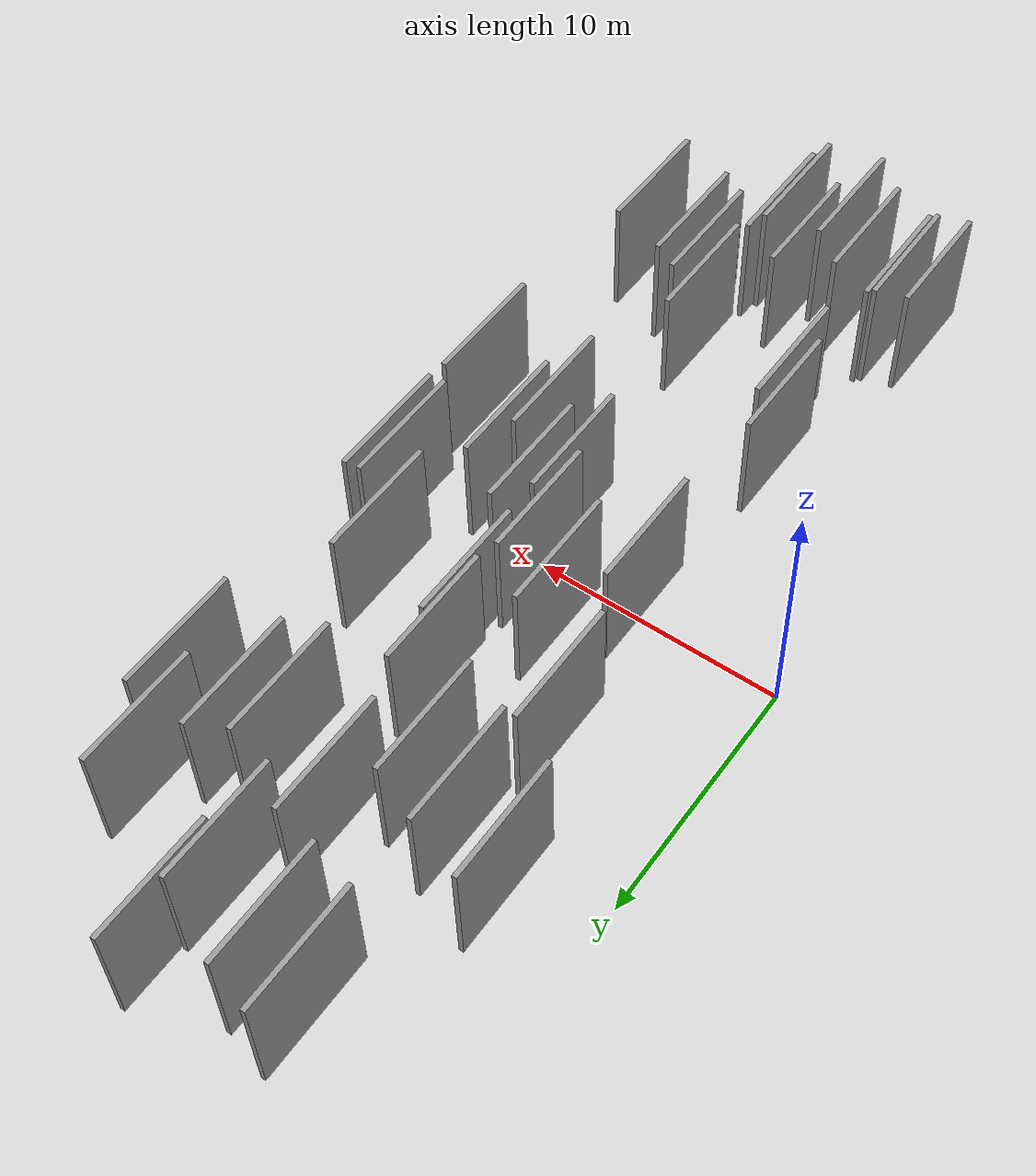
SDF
<sdf version="1.6">
 <world name="default">
  <scene>
   <sky><clouds><speed>12</speed></clouds></sky>
   <ambient>0.4 0.4 0.4 1</ambient>
   <background>0.7 0.7 0.7 1</background>
   <shadows>1</shadows>
  </scene>
  <gravity>0 0 -9.8066</gravity>
  <magnetic_field>6e-06 2.3e-05 -4.2e-05</magnetic_field>
  <physics default="0" name="default_physics" type="ode">
   <ode>
    <solver>
     <type>quick</type>
     <iters>10</iters>
     <sor>1.0</sor>
     <use_dynamic_moi_rescaling>0</use_dynamic_moi_rescaling>
    </solver>
    <constraints>
     <cfm>0</cfm>
     <erp>0.2</erp>
     <contact_max_correcting_vel>100</contact_max_correcting_vel>
     <contact_surface_layer>0.001</contact_surface_layer>
    </constraints>
   </ode>
   <max_step_size>0.004</max_step_size>
   <real_time_factor>1</real_time_factor>
   <real_time_update_rate>250</real_time_update_rate>
  </physics>
  <light name="sun" type="directional">
   <pose>0 0 10 0 0 0</pose>
   <diffuse>0.8 0.8 0.8 1</diffuse>
   <specular>0.2 0.2 0.2 1</specular>
   <attenuation>
    <range>1000</range>
    <constant>0.9</constant>
    <linear>0.01</linear>
    <quadratic>0.001</quadratic>
   </attenuation>
   <direction>-0.5 0.1 -0.9</direction>
  </light>
  <model name="grey_wall_1">
   <static>1</static>
   <pose>7.5048 17.9329 0.0 0.000000 0.000000 1.570796</pose>
   <link name="link">
    <pose>0 0 2.50 0 0 0</pose>
    <collision name="collision"><geometry><box><size>5.00 0.2 5.00</size></box></geometry></collision>
    <visual name="visual">
     <cast_shadows>0</cast_shadows>
     <geometry><box><size>5.00 0.2 5.00</size></box></geometry>
     <material>
      <script>
       <uri>model://grey_wall/materials/scripts</uri>
       <uri>model://grey_wall/materials/textures</uri>
       <name>vrc/grey_wall</name>
      </script>
     </material>
    </visual>
   </link>
  </model>
  <model name="grey_wall_2">
   <static>1</static>
   <pose>5.9028 -0.4263 0.0 0.000000 0.000000 1.570796</pose>
   <link name="link">
    <pose>0 0 2.50 0 0 0</pose>
    <collision name="collision"><geometry><box><size>5.00 0.2 5.00</size></box></geometry></collision>
    <visual name="visual">
     <cast_shadows>0</cast_shadows>
     <geometry><box><size>5.00 0.2 5.00</size></box></geometry>
     <material>
      <script>
       <uri>model://grey_wall/materials/scripts</uri>
       <uri>model://grey_wall/materials/textures</uri>
       <name>vrc/grey_wall</name>
      </script>
     </material>
    </visual>
   </link>
  </model>
  <model name="grey_wall_3">
   <static>1</static>
   <pose>9.2255 12.8339 0.0 0.000000 0.000000 1.570796</pose>
   <link name="link">
    <pose>0 0 2.50 0 0 0</pose>
    <collision name="collision"><geometry><box><size>5.00 0.2 5.00</size></box></geometry></collision>
    <visual name="visual">
     <cast_shadows>0</cast_shadows>
     <geometry><box><size>5.00 0.2 5.00</size></box></geometry>
     <material>
      <script>
       <uri>model://grey_wall/materials/scripts</uri>
       <uri>model://grey_wall/materials/textures</uri>
       <name>vrc/grey_wall</name>
      </script>
     </material>
    </visual>
   </link>
  </model>
  <model name="grey_wall_4">
   <static>1</static>
   <pose>3.2447 11.5406 0.0 0.000000 0.000000 1.570796</pose>
   <link name="link">
    <pose>0 0 2.50 0 0 0</pose>
    <collision name="collision"><geometry><box><size>5.00 0.2 5.00</size></box></geometry></collision>
    <visual name="visual">
     <cast_shadows>0</cast_shadows>
     <geometry><box><size>5.00 0.2 5.00</size></box></geometry>
     <material>
      <script>
       <uri>model://grey_wall/materials/scripts</uri>
       <uri>model://grey_wall/materials/textures</uri>
       <name>vrc/grey_wall</name>
      </script>
     </material>
    </visual>
   </link>
  </model>
  <model name="grey_wall_5">
   <static>1</static>
   <pose>10.5711 -18.1809 0.0 0.000000 0.000000 1.570796</pose>
   <link name="link">
    <pose>0 0 2.50 0 0 0</pose>
    <collision name="collision"><geometry><box><size>5.00 0.2 5.00</size></box></geometry></collision>
    <visual name="visual">
     <cast_shadows>0</cast_shadows>
     <geometry><box><size>5.00 0.2 5.00</size></box></geometry>
     <material>
      <script>
       <uri>model://grey_wall/materials/scripts</uri>
       <uri>model://grey_wall/materials/textures</uri>
       <name>vrc/grey_wall</name>
      </script>
     </material>
    </visual>
   </link>
  </model>
  <model name="grey_wall_6">
   <static>1</static>
   <pose>10.1939 -2.1750 0.0 0.000000 0.000000 1.570796</pose>
   <link name="link">
    <pose>0 0 2.50 0 0 0</pose>
    <collision name="collision"><geometry><box><size>5.00 0.2 5.00</size></box></geometry></collision>
    <visual name="visual">
     <cast_shadows>0</cast_shadows>
     <geometry><box><size>5.00 0.2 5.00</size></box></geometry>
     <material>
      <script>
       <uri>model://grey_wall/materials/scripts</uri>
       <uri>model://grey_wall/materials/textures</uri>
       <name>vrc/grey_wall</name>
      </script>
     </material>
    </visual>
   </link>
  </model>
  <model name="grey_wall_7">
   <static>1</static>
   <pose>9.8791 6.3956 0.0 0.000000 0.000000 1.570796</pose>
   <link name="link">
    <pose>0 0 2.50 0 0 0</pose>
    <collision name="collision"><geometry><box><size>5.00 0.2 5.00</size></box></geometry></collision>
    <visual name="visual">
     <cast_shadows>0</cast_shadows>
     <geometry><box><size>5.00 0.2 5.00</size></box></geometry>
     <material>
      <script>
       <uri>model://grey_wall/materials/scripts</uri>
       <uri>model://grey_wall/materials/textures</uri>
       <name>vrc/grey_wall</name>
      </script>
     </material>
    </visual>
   </link>
  </model>
  <model name="grey_wall_8">
   <static>1</static>
   <pose>16.2139 11.9730 0.0 0.000000 0.000000 1.570796</pose>
   <link name="link">
    <pose>0 0 2.50 0 0 0</pose>
    <collision name="collision"><geometry><box><size>5.00 0.2 5.00</size></box></geometry></collision>
    <visual name="visual">
     <cast_shadows>0</cast_shadows>
     <geometry><box><size>5.00 0.2 5.00</size></box></geometry>
     <material>
      <script>
       <uri>model://grey_wall/materials/scripts</uri>
       <uri>model://grey_wall/materials/textures</uri>
       <name>vrc/grey_wall</name>
      </script>
     </material>
    </visual>
   </link>
  </model>
  <model name="grey_wall_9">
   <static>1</static>
   <pose>9.1282 -16.3875 0.0 0.000000 0.000000 1.570796</pose>
   <link name="link">
    <pose>0 0 2.50 0 0 0</pose>
    <collision name="collision"><geometry><box><size>5.00 0.2 5.00</size></box></geometry></collision>
    <visual name="visual">
     <cast_shadows>0</cast_shadows>
     <geometry><box><size>5.00 0.2 5.00</size></box></geometry>
     <material>
      <script>
       <uri>model://grey_wall/materials/scripts</uri>
       <uri>model://grey_wall/materials/textures</uri>
       <name>vrc/grey_wall</name>
      </script>
     </material>
    </visual>
   </link>
  </model>
  <model name="grey_wall_10">
   <static>1</static>
   <pose>16.0700 -4.8649 0.0 0.000000 0.000000 1.570796</pose>
   <link name="link">
    <pose>0 0 2.50 0 0 0</pose>
    <collision name="collision"><geometry><box><size>5.00 0.2 5.00</size></box></geometry></collision>
    <visual name="visual">
     <cast_shadows>0</cast_shadows>
     <geometry><box><size>5.00 0.2 5.00</size></box></geometry>
     <material>
      <script>
       <uri>model://grey_wall/materials/scripts</uri>
       <uri>model://grey_wall/materials/textures</uri>
       <name>vrc/grey_wall</name>
      </script>
     </material>
    </visual>
   </link>
  </model>
  <model name="grey_wall_11">
   <static>1</static>
   <pose>13.6249 12.1517 0.0 0.000000 0.000000 1.570796</pose>
   <link name="link">
    <pose>0 0 2.50 0 0 0</pose>
    <collision name="collision"><geometry><box><size>5.00 0.2 5.00</size></box></geometry></collision>
    <visual name="visual">
     <cast_shadows>0</cast_shadows>
     <geometry><box><size>5.00 0.2 5.00</size></box></geometry>
     <material>
      <script>
       <uri>model://grey_wall/materials/scripts</uri>
       <uri>model://grey_wall/materials/textures</uri>
       <name>vrc/grey_wall</name>
      </script>
     </material>
    </visual>
   </link>
  </model>
  <model name="grey_wall_12">
   <static>1</static>
   <pose>14.2593 3.8317 0.0 0.000000 0.000000 1.570796</pose>
   <link name="link">
    <pose>0 0 2.50 0 0 0</pose>
    <collision name="collision"><geometry><box><size>5.00 0.2 5.00</size></box></geometry></collision>
    <visual name="visual">
     <cast_shadows>0</cast_shadows>
     <geometry><box><size>5.00 0.2 5.00</size></box></geometry>
     <material>
      <script>
       <uri>model://grey_wall/materials/scripts</uri>
       <uri>model://grey_wall/materials/textures</uri>
       <name>vrc/grey_wall</name>
      </script>
     </material>
    </visual>
   </link>
  </model>
  <model name="grey_wall_13">
   <static>1</static>
   <pose>7.5498 9.9339 0.0 0.000000 0.000000 1.570796</pose>
   <link name="link">
    <pose>0 0 2.50 0 0 0</pose>
    <collision name="collision"><geometry><box><size>5.00 0.2 5.00</size></box></geometry></collision>
    <visual name="visual">
     <cast_shadows>0</cast_shadows>
     <geometry><box><size>5.00 0.2 5.00</size></box></geometry>
     <material>
      <script>
       <uri>model://grey_wall/materials/scripts</uri>
       <uri>model://grey_wall/materials/textures</uri>
       <name>vrc/grey_wall</name>
      </script>
     </material>
    </visual>
   </link>
  </model>
  <model name="grey_wall_14">
   <static>1</static>
   <pose>9.6706 0.6236 0.0 0.000000 0.000000 1.570796</pose>
   <link name="link">
    <pose>0 0 2.50 0 0 0</pose>
    <collision name="collision"><geometry><box><size>5.00 0.2 5.00</size></box></geometry></collision>
    <visual name="visual">
     <cast_shadows>0</cast_shadows>
     <geometry><box><size>5.00 0.2 5.00</size></box></geometry>
     <material>
      <script>
       <uri>model://grey_wall/materials/scripts</uri>
       <uri>model://grey_wall/materials/textures</uri>
       <name>vrc/grey_wall</name>
      </script>
     </material>
    </visual>
   </link>
  </model>
  <model name="grey_wall_15">
   <static>1</static>
   <pose>5.4642 -8.7777 0.0 0.000000 0.000000 1.570796</pose>
   <link name="link">
    <pose>0 0 2.50 0 0 0</pose>
    <collision name="collision"><geometry><box><size>5.00 0.2 5.00</size></box></geometry></collision>
    <visual name="visual">
     <cast_shadows>0</cast_shadows>
     <geometry><box><size>5.00 0.2 5.00</size></box></geometry>
     <material>
      <script>
       <uri>model://grey_wall/materials/scripts</uri>
       <uri>model://grey_wall/materials/textures</uri>
       <name>vrc/grey_wall</name>
      </script>
     </material>
    </visual>
   </link>
  </model>
  <model name="grey_wall_16">
   <static>1</static>
   <pose>15.2874 14.9542 0.0 0.000000 0.000000 1.570796</pose>
   <link name="link">
    <pose>0 0 2.50 0 0 0</pose>
    <collision name="collision"><geometry><box><size>5.00 0.2 5.00</size></box></geometry></collision>
    <visual name="visual">
     <cast_shadows>0</cast_shadows>
     <geometry><box><size>5.00 0.2 5.00</size></box></geometry>
     <material>
      <script>
       <uri>model://grey_wall/materials/scripts</uri>
       <uri>model://grey_wall/materials/textures</uri>
       <name>vrc/grey_wall</name>
      </script>
     </material>
    </visual>
   </link>
  </model>
  <model name="grey_wall_17">
   <static>1</static>
   <pose>13.0476 -14.3991 0.0 0.000000 0.000000 1.570796</pose>
   <link name="link">
    <pose>0 0 2.50 0 0 0</pose>
    <collision name="collision"><geometry><box><size>5.00 0.2 5.00</size></box></geometry></collision>
    <visual name="visual">
     <cast_shadows>0</cast_shadows>
     <geometry><box><size>5.00 0.2 5.00</size></box></geometry>
     <material>
      <script>
       <uri>model://grey_wall/materials/scripts</uri>
       <uri>model://grey_wall/materials/textures</uri>
       <name>vrc/grey_wall</name>
      </script>
     </material>
    </visual>
   </link>
  </model>
  <model name="grey_wall_18">
   <static>1</static>
   <pose>11.1627 -12.2000 0.0 0.000000 0.000000 1.570796</pose>
   <link name="link">
    <pose>0 0 2.50 0 0 0</pose>
    <collision name="collision"><geometry><box><size>5.00 0.2 5.00</size></box></geometry></collision>
    <visual name="visual">
     <cast_shadows>0</cast_shadows>
     <geometry><box><size>5.00 0.2 5.00</size></box></geometry>
     <material>
      <script>
       <uri>model://grey_wall/materials/scripts</uri>
       <uri>model://grey_wall/materials/textures</uri>
       <name>vrc/grey_wall</name>
      </script>
     </material>
    </visual>
   </link>
  </model>
  <model name="grey_wall_19">
   <static>1</static>
   <pose>3.8867 -17.4439 0.0 0.000000 0.000000 1.570796</pose>
   <link name="link">
    <pose>0 0 2.50 0 0 0</pose>
    <collision name="collision"><geometry><box><size>5.00 0.2 5.00</size></box></geometry></collision>
    <visual name="visual">
     <cast_shadows>0</cast_shadows>
     <geometry><box><size>5.00 0.2 5.00</size></box></geometry>
     <material>
      <script>
       <uri>model://grey_wall/materials/scripts</uri>
       <uri>model://grey_wall/materials/textures</uri>
       <name>vrc/grey_wall</name>
      </script>
     </material>
    </visual>
   </link>
  </model>
  <model name="grey_wall_20">
   <static>1</static>
   <pose>16.1581 0.8074 0.0 0.000000 0.000000 1.570796</pose>
   <link name="link">
    <pose>0 0 2.50 0 0 0</pose>
    <collision name="collision"><geometry><box><size>5.00 0.2 5.00</size></box></geometry></collision>
    <visual name="visual">
     <cast_shadows>0</cast_shadows>
     <geometry><box><size>5.00 0.2 5.00</size></box></geometry>
     <material>
      <script>
       <uri>model://grey_wall/materials/scripts</uri>
       <uri>model://grey_wall/materials/textures</uri>
       <name>vrc/grey_wall</name>
      </script>
     </material>
    </visual>
   </link>
  </model>
  <model name="grey_wall_21">
   <static>1</static>
   <pose>5.1016 5.8637 0.0 0.000000 0.000000 1.570796</pose>
   <link name="link">
    <pose>0 0 2.50 0 0 0</pose>
    <collision name="collision"><geometry><box><size>5.00 0.2 5.00</size></box></geometry></collision>
    <visual name="visual">
     <cast_shadows>0</cast_shadows>
     <geometry><box><size>5.00 0.2 5.00</size></box></geometry>
     <material>
      <script>
       <uri>model://grey_wall/materials/scripts</uri>
       <uri>model://grey_wall/materials/textures</uri>
       <name>vrc/grey_wall</name>
      </script>
     </material>
    </visual>
   </link>
  </model>
  <model name="grey_wall_22">
   <static>1</static>
   <pose>12.4100 -4.1178 0.0 0.000000 0.000000 1.570796</pose>
   <link name="link">
    <pose>0 0 2.50 0 0 0</pose>
    <collision name="collision"><geometry><box><size>5.00 0.2 5.00</size></box></geometry></collision>
    <visual name="visual">
     <cast_shadows>0</cast_shadows>
     <geometry><box><size>5.00 0.2 5.00</size></box></geometry>
     <material>
      <script>
       <uri>model://grey_wall/materials/scripts</uri>
       <uri>model://grey_wall/materials/textures</uri>
       <name>vrc/grey_wall</name>
      </script>
     </material>
    </visual>
   </link>
  </model>
  <model name="grey_wall_23">
   <static>1</static>
   <pose>6.0732 -10.3672 0.0 0.000000 0.000000 1.570796</pose>
   <link name="link">
    <pose>0 0 2.50 0 0 0</pose>
    <collision name="collision"><geometry><box><size>5.00 0.2 5.00</size></box></geometry></collision>
    <visual name="visual">
     <cast_shadows>0</cast_shadows>
     <geometry><box><size>5.00 0.2 5.00</size></box></geometry>
     <material>
      <script>
       <uri>model://grey_wall/materials/scripts</uri>
       <uri>model://grey_wall/materials/textures</uri>
       <name>vrc/grey_wall</name>
      </script>
     </material>
    </visual>
   </link>
  </model>
  <model name="grey_wall_24">
   <static>1</static>
   <pose>8.4093 -18.6599 0.0 0.000000 0.000000 1.570796</pose>
   <link name="link">
    <pose>0 0 2.50 0 0 0</pose>
    <collision name="collision"><geometry><box><size>5.00 0.2 5.00</size></box></geometry></collision>
    <visual name="visual">
     <cast_shadows>0</cast_shadows>
     <geometry><box><size>5.00 0.2 5.00</size></box></geometry>
     <material>
      <script>
       <uri>model://grey_wall/materials/scripts</uri>
       <uri>model://grey_wall/materials/textures</uri>
       <name>vrc/grey_wall</name>
      </script>
     </material>
    </visual>
   </link>
  </model>
  <model name="grey_wall_25">
   <static>1</static>
   <pose>7.8541 2.0817 0.0 0.000000 0.000000 1.570796</pose>
   <link name="link">
    <pose>0 0 2.50 0 0 0</pose>
    <collision name="collision"><geometry><box><size>5.00 0.2 5.00</size></box></geometry></collision>
    <visual name="visual">
     <cast_shadows>0</cast_shadows>
     <geometry><box><size>5.00 0.2 5.00</size></box></geometry>
     <material>
      <script>
       <uri>model://grey_wall/materials/scripts</uri>
       <uri>model://grey_wall/materials/textures</uri>
       <name>vrc/grey_wall</name>
      </script>
     </material>
    </visual>
   </link>
  </model>
  <model name="grey_wall_26">
   <static>1</static>
   <pose>10.8182 -17.3274 0.0 0.000000 0.000000 1.570796</pose>
   <link name="link">
    <pose>0 0 2.50 0 0 0</pose>
    <collision name="collision"><geometry><box><size>5.00 0.2 5.00</size></box></geometry></collision>
    <visual name="visual">
     <cast_shadows>0</cast_shadows>
     <geometry><box><size>5.00 0.2 5.00</size></box></geometry>
     <material>
      <script>
       <uri>model://grey_wall/materials/scripts</uri>
       <uri>model://grey_wall/materials/textures</uri>
       <name>vrc/grey_wall</name>
      </script>
     </material>
    </visual>
   </link>
  </model>
  <model name="grey_wall_27">
   <static>1</static>
   <pose>11.1472 -0.9657 0.0 0.000000 0.000000 1.570796</pose>
   <link name="link">
    <pose>0 0 2.50 0 0 0</pose>
    <collision name="collision"><geometry><box><size>5.00 0.2 5.00</size></box></geometry></collision>
    <visual name="visual">
     <cast_shadows>0</cast_shadows>
     <geometry><box><size>5.00 0.2 5.00</size></box></geometry>
     <material>
      <script>
       <uri>model://grey_wall/materials/scripts</uri>
       <uri>model://grey_wall/materials/textures</uri>
       <name>vrc/grey_wall</name>
      </script>
     </material>
    </visual>
   </link>
  </model>
  <model name="grey_wall_28">
   <static>1</static>
   <pose>12.2671 11.4439 0.0 0.000000 0.000000 1.570796</pose>
   <link name="link">
    <pose>0 0 2.50 0 0 0</pose>
    <collision name="collision"><geometry><box><size>5.00 0.2 5.00</size></box></geometry></collision>
    <visual name="visual">
     <cast_shadows>0</cast_shadows>
     <geometry><box><size>5.00 0.2 5.00</size></box></geometry>
     <material>
      <script>
       <uri>model://grey_wall/materials/scripts</uri>
       <uri>model://grey_wall/materials/textures</uri>
       <name>vrc/grey_wall</name>
      </script>
     </material>
    </visual>
   </link>
  </model>
  <model name="grey_wall_29">
   <static>1</static>
   <pose>5.6604 18.4603 0.0 0.000000 0.000000 1.570796</pose>
   <link name="link">
    <pose>0 0 2.50 0 0 0</pose>
    <collision name="collision"><geometry><box><size>5.00 0.2 5.00</size></box></geometry></collision>
    <visual name="visual">
     <cast_shadows>0</cast_shadows>
     <geometry><box><size>5.00 0.2 5.00</size></box></geometry>
     <material>
      <script>
       <uri>model://grey_wall/materials/scripts</uri>
       <uri>model://grey_wall/materials/textures</uri>
       <name>vrc/grey_wall</name>
      </script>
     </material>
    </visual>
   </link>
  </model>
  <model name="grey_wall_30">
   <static>1</static>
   <pose>10.4909 16.5807 0.0 0.000000 0.000000 1.570796</pose>
   <link name="link">
    <pose>0 0 2.50 0 0 0</pose>
    <collision name="collision"><geometry><box><size>5.00 0.2 5.00</size></box></geometry></collision>
    <visual name="visual">
     <cast_shadows>0</cast_shadows>
     <geometry><box><size>5.00 0.2 5.00</size></box></geometry>
     <material>
      <script>
       <uri>model://grey_wall/materials/scripts</uri>
       <uri>model://grey_wall/materials/textures</uri>
       <name>vrc/grey_wall</name>
      </script>
     </material>
    </visual>
   </link>
  </model>
  <model name="grey_wall_31">
   <static>1</static>
   <pose>12.0393 -13.8612 0.0 0.000000 0.000000 1.570796</pose>
   <link name="link">
    <pose>0 0 2.50 0 0 0</pose>
    <collision name="collision"><geometry><box><size>5.00 0.2 5.00</size></box></geometry></collision>
    <visual name="visual">
     <cast_shadows>0</cast_shadows>
     <geometry><box><size>5.00 0.2 5.00</size></box></geometry>
     <material>
      <script>
       <uri>model://grey_wall/materials/scripts</uri>
       <uri>model://grey_wall/materials/textures</uri>
       <name>vrc/grey_wall</name>
      </script>
     </material>
    </visual>
   </link>
  </model>
  <model name="grey_wall_32">
   <static>1</static>
   <pose>5.0674 -17.0747 0.0 0.000000 0.000000 1.570796</pose>
   <link name="link">
    <pose>0 0 2.50 0 0 0</pose>
    <collision name="collision"><geometry><box><size>5.00 0.2 5.00</size></box></geometry></collision>
    <visual name="visual">
     <cast_shadows>0</cast_shadows>
     <geometry><box><size>5.00 0.2 5.00</size></box></geometry>
     <material>
      <script>
       <uri>model://grey_wall/materials/scripts</uri>
       <uri>model://grey_wall/materials/textures</uri>
       <name>vrc/grey_wall</name>
      </script>
     </material>
    </visual>
   </link>
  </model>
  <model name="grey_wall_33">
   <static>1</static>
   <pose>10.7677 19.2513 0.0 0.000000 0.000000 1.570796</pose>
   <link name="link">
    <pose>0 0 2.50 0 0 0</pose>
    <collision name="collision"><geometry><box><size>5.00 0.2 5.00</size></box></geometry></collision>
    <visual name="visual">
     <cast_shadows>0</cast_shadows>
     <geometry><box><size>5.00 0.2 5.00</size></box></geometry>
     <material>
      <script>
       <uri>model://grey_wall/materials/scripts</uri>
       <uri>model://grey_wall/materials/textures</uri>
       <name>vrc/grey_wall</name>
      </script>
     </material>
    </visual>
   </link>
  </model>
  <model name="grey_wall_34">
   <static>1</static>
   <pose>5.2914 -16.8604 0.0 0.000000 0.000000 1.570796</pose>
   <link name="link">
    <pose>0 0 2.50 0 0 0</pose>
    <collision name="collision"><geometry><box><size>5.00 0.2 5.00</size></box></geometry></collision>
    <visual name="visual">
     <cast_shadows>0</cast_shadows>
     <geometry><box><size>5.00 0.2 5.00</size></box></geometry>
     <material>
      <script>
       <uri>model://grey_wall/materials/scripts</uri>
       <uri>model://grey_wall/materials/textures</uri>
       <name>vrc/grey_wall</name>
      </script>
     </material>
    </visual>
   </link>
  </model>
  <model name="grey_wall_35">
   <static>1</static>
   <pose>13.0576 -2.1494 0.0 0.000000 0.000000 1.570796</pose>
   <link name="link">
    <pose>0 0 2.50 0 0 0</pose>
    <collision name="collision"><geometry><box><size>5.00 0.2 5.00</size></box></geometry></collision>
    <visual name="visual">
     <cast_shadows>0</cast_shadows>
     <geometry><box><size>5.00 0.2 5.00</size></box></geometry>
     <material>
      <script>
       <uri>model://grey_wall/materials/scripts</uri>
       <uri>model://grey_wall/materials/textures</uri>
       <name>vrc/grey_wall</name>
      </script>
     </material>
    </visual>
   </link>
  </model>
  <model name="grey_wall_36">
   <static>1</static>
   <pose>10.1417 4.2057 0.0 0.000000 0.000000 1.570796</pose>
   <link name="link">
    <pose>0 0 2.50 0 0 0</pose>
    <collision name="collision"><geometry><box><size>5.00 0.2 5.00</size></box></geometry></collision>
    <visual name="visual">
     <cast_shadows>0</cast_shadows>
     <geometry><box><size>5.00 0.2 5.00</size></box></geometry>
     <material>
      <script>
       <uri>model://grey_wall/materials/scripts</uri>
       <uri>model://grey_wall/materials/textures</uri>
       <name>vrc/grey_wall</name>
      </script>
     </material>
    </visual>
   </link>
  </model>
  <model name="grey_wall_37">
   <static>1</static>
   <pose>15.3630 -15.1234 0.0 0.000000 0.000000 1.570796</pose>
   <link name="link">
    <pose>0 0 2.50 0 0 0</pose>
    <collision name="collision"><geometry><box><size>5.00 0.2 5.00</size></box></geometry></collision>
    <visual name="visual">
     <cast_shadows>0</cast_shadows>
     <geometry><box><size>5.00 0.2 5.00</size></box></geometry>
     <material>
      <script>
       <uri>model://grey_wall/materials/scripts</uri>
       <uri>model://grey_wall/materials/textures</uri>
       <name>vrc/grey_wall</name>
      </script>
     </material>
    </visual>
   </link>
  </model>
  <model name="grey_wall_38">
   <static>1</static>
   <pose>7.0636 -17.5063 0.0 0.000000 0.000000 1.570796</pose>
   <link name="link">
    <pose>0 0 2.50 0 0 0</pose>
    <collision name="collision"><geometry><box><size>5.00 0.2 5.00</size></box></geometry></collision>
    <visual name="visual">
     <cast_shadows>0</cast_shadows>
     <geometry><box><size>5.00 0.2 5.00</size></box></geometry>
     <material>
      <script>
       <uri>model://grey_wall/materials/scripts</uri>
       <uri>model://grey_wall/materials/textures</uri>
       <name>vrc/grey_wall</name>
      </script>
     </material>
    </visual>
   </link>
  </model>
  <model name="grey_wall_39">
   <static>1</static>
   <pose>5.5912 10.7471 0.0 0.000000 0.000000 1.570796</pose>
   <link name="link">
    <pose>0 0 2.50 0 0 0</pose>
    <collision name="collision"><geometry><box><size>5.00 0.2 5.00</size></box></geometry></collision>
    <visual name="visual">
     <cast_shadows>0</cast_shadows>
     <geometry><box><size>5.00 0.2 5.00</size></box></geometry>
     <material>
      <script>
       <uri>model://grey_wall/materials/scripts</uri>
       <uri>model://grey_wall/materials/textures</uri>
       <name>vrc/grey_wall</name>
      </script>
     </material>
    </visual>
   </link>
  </model>
  <model name="grey_wall_40">
   <static>1</static>
   <pose>15.5675 0.7309 0.0 0.000000 0.000000 1.570796</pose>
   <link name="link">
    <pose>0 0 2.50 0 0 0</pose>
    <collision name="collision"><geometry><box><size>5.00 0.2 5.00</size></box></geometry></collision>
    <visual name="visual">
     <cast_shadows>0</cast_shadows>
     <geometry><box><size>5.00 0.2 5.00</size></box></geometry>
     <material>
      <script>
       <uri>model://grey_wall/materials/scripts</uri>
       <uri>model://grey_wall/materials/textures</uri>
       <name>vrc/grey_wall</name>
      </script>
     </material>
    </visual>
   </link>
  </model>
 </world>
</sdf>
